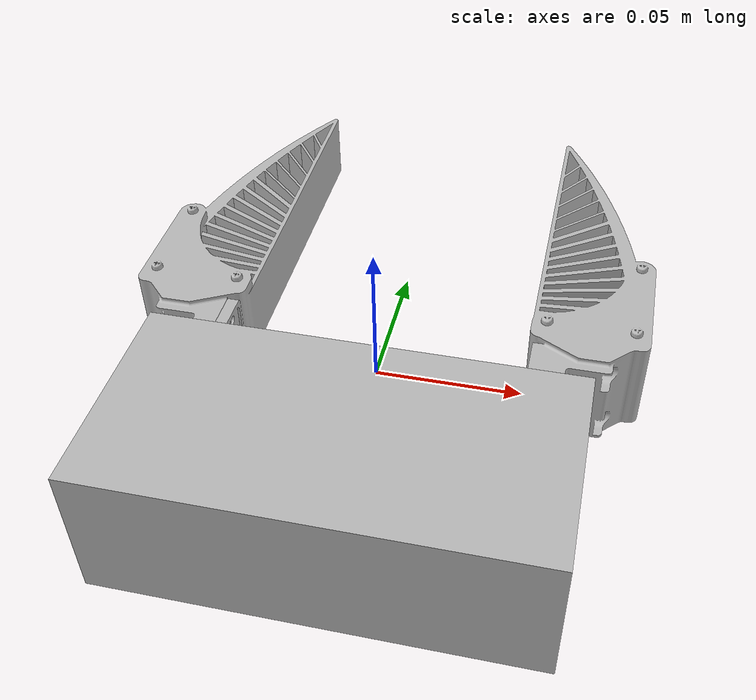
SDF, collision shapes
<?xml version="1.0"?>
<!-- Taken from nepfaff's repo scene_gen_policy -->
<sdf version="1.7">
  <model name="Schunk_Gripper">
    <link name="body">
      <pose>0 -0.049133 0 0 0 0</pose>
      <inertial>
        <mass>0.988882</mass>
        <inertia>
          <ixx>0.162992</ixx>
          <ixy>0</ixy>
          <ixz>0</ixz>
          <iyy>0.162992</iyy>
          <iyz>0</iyz>
          <izz>0.164814</izz>
        </inertia>
      </inertial>
      <visual name="visual">
        <geometry>
          <mesh>
            <scale>1 1 1</scale>
            <uri>package://drake_models/wsg_50_description/meshes/wsg_body.gltf</uri>
          </mesh>
        </geometry>
      </visual>
      <collision name="collision">
        <geometry>
          <box>
            <size>0.146 0.0725 0.05</size>
          </box>
        </geometry>
        <surface>
          <friction>
            <ode>
              <mu>1</mu>
              <mu2>1</mu2>
              <fdir1>0 0 0</fdir1>
              <slip1>0</slip1>
              <slip2>0</slip2>
            </ode>
            <torsional>
              <coefficient>1</coefficient>
              <patch_radius>0</patch_radius>
              <surface_radius>0</surface_radius>
              <use_patch_radius>1</use_patch_radius>
              <ode>
                <slip>0</slip>
              </ode>
            </torsional>
          </friction>
          <bounce>
            <restitution_coefficient>0</restitution_coefficient>
            <threshold>1e+06</threshold>
          </bounce>
          <contact>
            <collide_without_contact>0</collide_without_contact>
            <collide_without_contact_bitmask>1</collide_without_contact_bitmask>
            <collide_bitmask>1</collide_bitmask>
            <ode>
              <soft_cfm>0</soft_cfm>
              <soft_erp>0.2</soft_erp>
              <kp>1e+13</kp>
              <kd>1</kd>
              <max_vel>0.01</max_vel>
              <min_depth>0</min_depth>
            </ode>
            <bullet>
              <split_impulse>1</split_impulse>
              <split_impulse_penetration_threshold>-0.01</split_impulse_penetration_threshold>
              <soft_cfm>0</soft_cfm>
              <soft_erp>0.2</soft_erp>
              <kp>1e+13</kp>
              <kd>1</kd>
            </bullet>
          </contact>
        </surface>
      </collision>
    </link>
    <frame name="body_frame">
      <pose relative_to="body"/>
    </frame>
    <link name="left_finger">
      <pose>-0.05 0.014 -0.013 1.57 3.14 0</pose>
      <inertial>
        <mass>0.05</mass>
        <inertia>
          <ixx>0.16</ixx>
          <ixy>0</ixy>
          <ixz>0</ixz>
          <iyy>0.16</iyy>
          <iyz>0</iyz>
          <izz>0.16</izz>
        </inertia>
      </inertial>
      <visual name="visual">
        <geometry>
          <mesh>
            <scale>1 1 1</scale>
            <uri>meshes/one_piece_wide_grasp_finray_finger.obj</uri>
          </mesh>
        </geometry>
      </visual>
      <collision name="collision">
        <geometry>
          <mesh>
            <scale>1 1 1</scale>
            <uri>meshes/one_piece_wide_grasp_finray_finger.obj</uri>
          </mesh>
        </geometry>
        <drake:proximity_properties>
          <drake:compliant_hydroelastic/>
          <drake:hydroelastic_modulus>1.0e6</drake:hydroelastic_modulus>
        </drake:proximity_properties>
        <surface>
          <friction>
            <ode>
              <mu>1</mu>
              <mu2>1</mu2>
              <fdir1>0 0 0</fdir1>
              <slip1>0</slip1>
              <slip2>0</slip2>
            </ode>
            <torsional>
              <coefficient>10</coefficient>
              <patch_radius>0</patch_radius>
              <surface_radius>0</surface_radius>
              <use_patch_radius>1</use_patch_radius>
              <ode>
                <slip>0</slip>
              </ode>
            </torsional>
          </friction>
          <bounce>
            <restitution_coefficient>0</restitution_coefficient>
            <threshold>1e+06</threshold>
          </bounce>
          <contact>
            <collide_without_contact>0</collide_without_contact>
            <collide_without_contact_bitmask>1</collide_without_contact_bitmask>
            <collide_bitmask>1</collide_bitmask>
            <ode>
              <soft_cfm>0</soft_cfm>
              <soft_erp>0.2</soft_erp>
              <kp>1e+13</kp>
              <kd>1</kd>
              <max_vel>0.01</max_vel>
              <min_depth>0</min_depth>
            </ode>
            <bullet>
              <split_impulse>1</split_impulse>
              <split_impulse_penetration_threshold>-0.01</split_impulse_penetration_threshold>
              <soft_cfm>0</soft_cfm>
              <soft_erp>0.2</soft_erp>
              <kp>1e+13</kp>
              <kd>1</kd>
            </bullet>
          </contact>
        </surface>
      </collision>
    </link>
    <link name="right_finger">
      <pose>0.05 0.014 0.013 1.57 0 0</pose>
      <inertial>
        <mass>0.05</mass>
        <inertia>
          <ixx>0.16</ixx>
          <ixy>0</ixy>
          <ixz>0</ixz>
          <iyy>0.16</iyy>
          <iyz>0</iyz>
          <izz>0.16</izz>
        </inertia>
      </inertial>
      <visual name="visual">
        <geometry>
          <mesh>
            <scale>1 1 1</scale>
            <uri>meshes/one_piece_wide_grasp_finray_finger.obj</uri>
          </mesh>
        </geometry>
      </visual>
      <collision name="collision">
        <geometry>
          <mesh>
            <scale>1 1 1</scale>
            <uri>meshes/one_piece_wide_grasp_finray_finger.obj</uri>
          </mesh>
        </geometry>
        <drake:proximity_properties>
          <drake:compliant_hydroelastic/>
          <drake:hydroelastic_modulus>1.0e6</drake:hydroelastic_modulus>
        </drake:proximity_properties>
        <surface>
          <friction>
            <ode>
              <mu>1</mu>
              <mu2>1</mu2>
              <fdir1>0 0 0</fdir1>
              <slip1>0</slip1>
              <slip2>0</slip2>
            </ode>
            <torsional>
              <coefficient>10</coefficient>
              <patch_radius>0</patch_radius>
              <surface_radius>0</surface_radius>
              <use_patch_radius>1</use_patch_radius>
              <ode>
                <slip>0</slip>
              </ode>
            </torsional>
          </friction>
          <bounce>
            <restitution_coefficient>0</restitution_coefficient>
            <threshold>1e+06</threshold>
          </bounce>
          <contact>
            <collide_without_contact>0</collide_without_contact>
            <collide_without_contact_bitmask>1</collide_without_contact_bitmask>
            <collide_bitmask>1</collide_bitmask>
            <ode>
              <soft_cfm>0</soft_cfm>
              <soft_erp>0.2</soft_erp>
              <kp>1e+13</kp>
              <kd>1</kd>
              <max_vel>0.01</max_vel>
              <min_depth>0</min_depth>
            </ode>
            <bullet>
              <split_impulse>1</split_impulse>
              <split_impulse_penetration_threshold>-0.01</split_impulse_penetration_threshold>
              <soft_cfm>0</soft_cfm>
              <soft_erp>0.2</soft_erp>
              <kp>1e+13</kp>
              <kd>1</kd>
            </bullet>
          </contact>
        </surface>
      </collision>
    </link>
    <joint name="left_finger_sliding_joint" type="fixed">
      <parent>body</parent>
      <child>left_finger</child>
    </joint>
    <joint name="right_finger_sliding_joint" type="fixed">
      <parent>body</parent>
      <child>right_finger</child>
    </joint>
    <static>0</static>
  </model>
</sdf>
